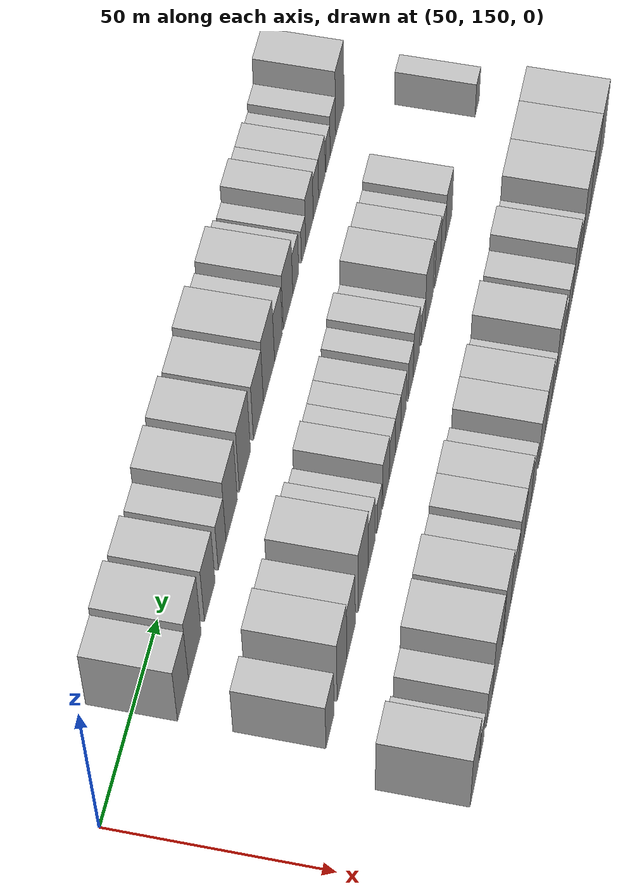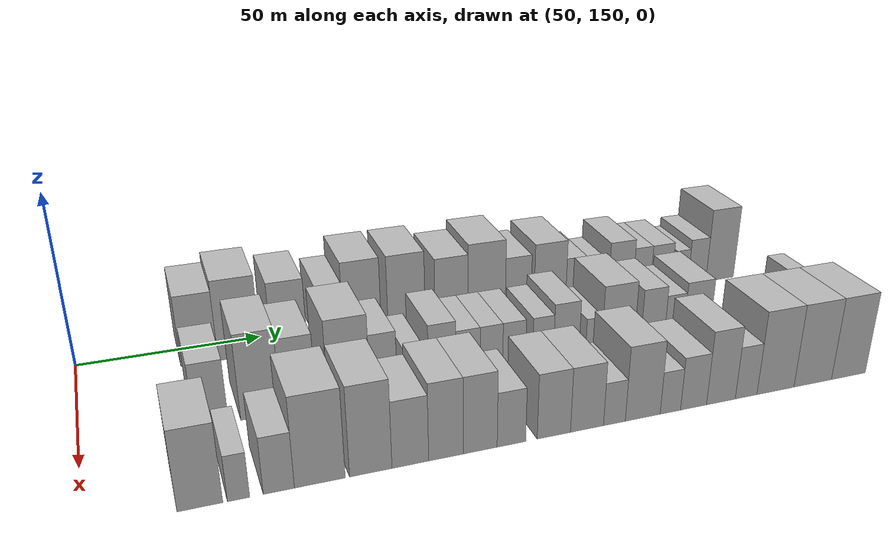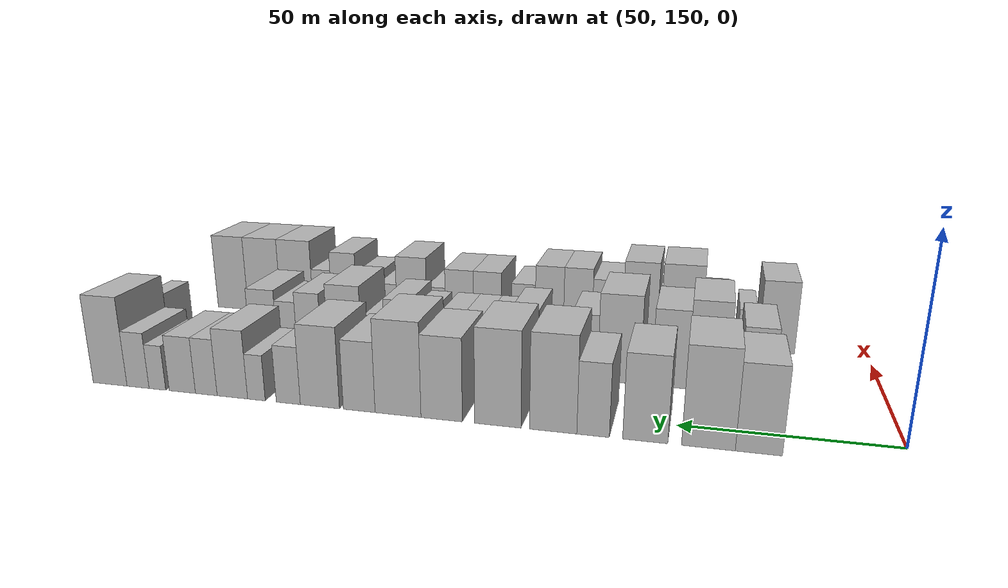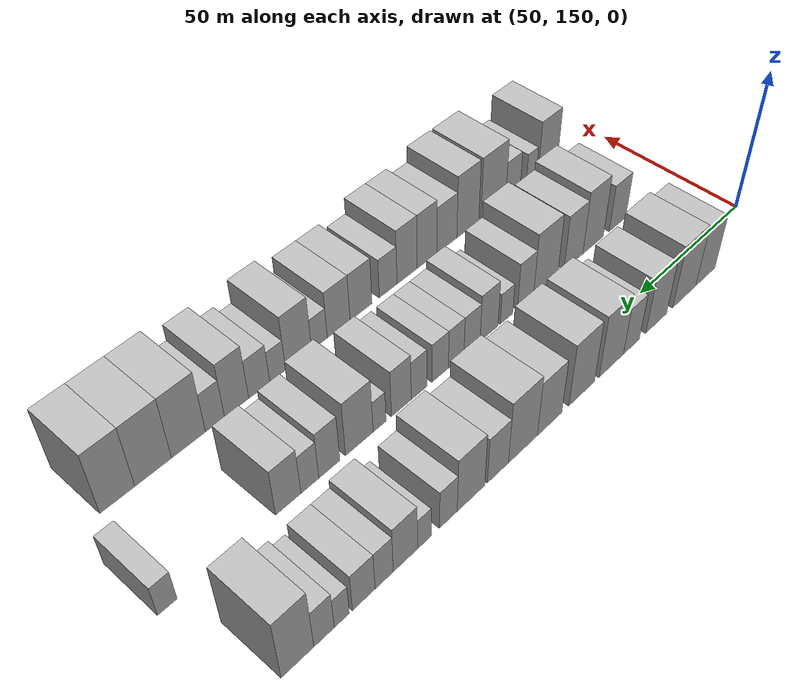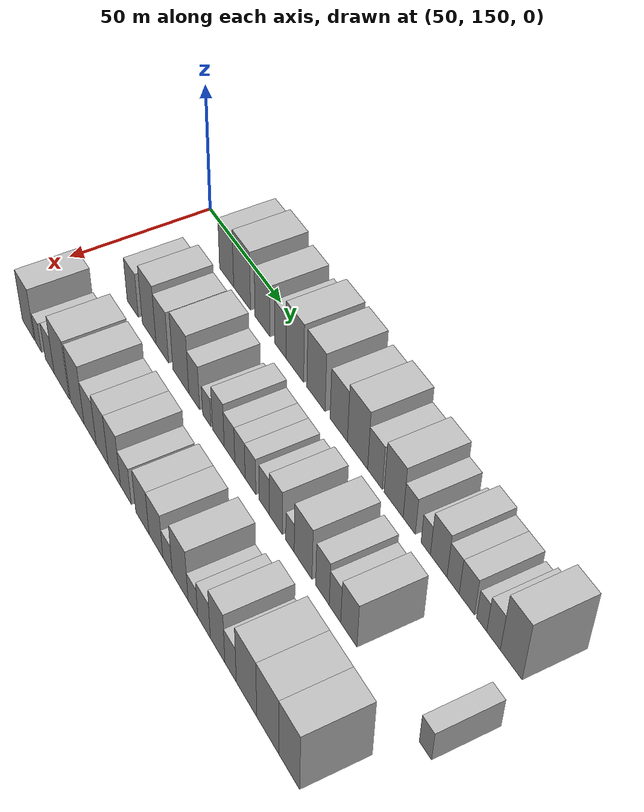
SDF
<sdf version="1.6">
 <world name="default">
  <model name="building_61">
   <static>1</static>
   <pose>50.0000 181.9938 0 0.000000 0.000000 0.000000</pose>
   <link name="link">
    <pose>0 0 10.50 0 0 0</pose>
    <collision name="collision"><geometry><box><size>20.0000 9.9606 21.0000</size></box></geometry></collision>
    <visual name="visual">
     <cast_shadows>0</cast_shadows>
     <geometry><box><size>20.0000 9.9606 21.0000</size></box></geometry>
     <material>
      <script>
       <uri>model://HANNAS_wall/materials/scripts</uri>
       <uri>model://HANNAS_wall/materials/textures</uri>
       <name>vrc/HANNAS_wall</name>
      </script>
     </material>
    </visual>
   </link>
  </model>
  <model name="building_62">
   <static>1</static>
   <pose>50.0000 192.7815 0 0.000000 0.000000 0.000000</pose>
   <link name="link">
    <pose>0 0 12.00 0 0 0</pose>
    <collision name="collision"><geometry><box><size>20.0000 11.6148 24.0000</size></box></geometry></collision>
    <visual name="visual">
     <cast_shadows>0</cast_shadows>
     <geometry><box><size>20.0000 11.6148 24.0000</size></box></geometry>
     <material>
      <script>
       <uri>model://HANNAS_wall/materials/scripts</uri>
       <uri>model://HANNAS_wall/materials/textures</uri>
       <name>vrc/HANNAS_wall</name>
      </script>
     </material>
    </visual>
   </link>
  </model>
  <model name="building_63">
   <static>1</static>
   <pose>50.0000 206.6255 0 0.000000 0.000000 0.000000</pose>
   <link name="link">
    <pose>0 0 10.50 0 0 0</pose>
    <collision name="collision"><geometry><box><size>20.0000 10.0733 21.0000</size></box></geometry></collision>
    <visual name="visual">
     <cast_shadows>0</cast_shadows>
     <geometry><box><size>20.0000 10.0733 21.0000</size></box></geometry>
     <material>
      <script>
       <uri>model://HANNAS_wall/materials/scripts</uri>
       <uri>model://HANNAS_wall/materials/textures</uri>
       <name>vrc/HANNAS_wall</name>
      </script>
     </material>
    </visual>
   </link>
  </model>
  <model name="building_64">
   <static>1</static>
   <pose>50.0000 218.3862 0 0.000000 0.000000 0.000000</pose>
   <link name="link">
    <pose>0 0 9.00 0 0 0</pose>
    <collision name="collision"><geometry><box><size>20.0000 7.4482 18.0000</size></box></geometry></collision>
    <visual name="visual">
     <cast_shadows>0</cast_shadows>
     <geometry><box><size>20.0000 7.4482 18.0000</size></box></geometry>
     <material>
      <script>
       <uri>model://HANNAS_wall/materials/scripts</uri>
       <uri>model://HANNAS_wall/materials/textures</uri>
       <name>vrc/HANNAS_wall</name>
      </script>
     </material>
    </visual>
   </link>
  </model>
  <model name="building_65">
   <static>1</static>
   <pose>50.0000 227.6349 0 0.000000 0.000000 0.000000</pose>
   <link name="link">
    <pose>0 0 12.00 0 0 0</pose>
    <collision name="collision"><geometry><box><size>20.0000 11.0491 24.0000</size></box></geometry></collision>
    <visual name="visual">
     <cast_shadows>0</cast_shadows>
     <geometry><box><size>20.0000 11.0491 24.0000</size></box></geometry>
     <material>
      <script>
       <uri>model://HANNAS_wall/materials/scripts</uri>
       <uri>model://HANNAS_wall/materials/textures</uri>
       <name>vrc/HANNAS_wall</name>
      </script>
     </material>
    </visual>
   </link>
  </model>
  <model name="building_66">
   <static>1</static>
   <pose>50.0000 240.7223 0 0.000000 0.000000 0.000000</pose>
   <link name="link">
    <pose>0 0 12.00 0 0 0</pose>
    <collision name="collision"><geometry><box><size>20.0000 11.1257 24.0000</size></box></geometry></collision>
    <visual name="visual">
     <cast_shadows>0</cast_shadows>
     <geometry><box><size>20.0000 11.1257 24.0000</size></box></geometry>
     <material>
      <script>
       <uri>model://HANNAS_wall/materials/scripts</uri>
       <uri>model://HANNAS_wall/materials/textures</uri>
       <name>vrc/HANNAS_wall</name>
      </script>
     </material>
    </visual>
   </link>
  </model>
  <model name="building_67">
   <static>1</static>
   <pose>50.0000 254.3951 0 0.000000 0.000000 0.000000</pose>
   <link name="link">
    <pose>0 0 10.50 0 0 0</pose>
    <collision name="collision"><geometry><box><size>20.0000 10.2200 21.0000</size></box></geometry></collision>
    <visual name="visual">
     <cast_shadows>0</cast_shadows>
     <geometry><box><size>20.0000 10.2200 21.0000</size></box></geometry>
     <material>
      <script>
       <uri>model://HANNAS_wall/materials/scripts</uri>
       <uri>model://HANNAS_wall/materials/textures</uri>
       <name>vrc/HANNAS_wall</name>
      </script>
     </material>
    </visual>
   </link>
  </model>
  <model name="building_68">
   <static>1</static>
   <pose>50.0000 265.3061 0 0.000000 0.000000 0.000000</pose>
   <link name="link">
    <pose>0 0 12.00 0 0 0</pose>
    <collision name="collision"><geometry><box><size>20.0000 11.6021 24.0000</size></box></geometry></collision>
    <visual name="visual">
     <cast_shadows>0</cast_shadows>
     <geometry><box><size>20.0000 11.6021 24.0000</size></box></geometry>
     <material>
      <script>
       <uri>model://HANNAS_wall/materials/scripts</uri>
       <uri>model://HANNAS_wall/materials/textures</uri>
       <name>vrc/HANNAS_wall</name>
      </script>
     </material>
    </visual>
   </link>
  </model>
  <model name="building_69">
   <static>1</static>
   <pose>50.0000 275.2057 0 0.000000 0.000000 0.000000</pose>
   <link name="link">
    <pose>0 0 9.00 0 0 0</pose>
    <collision name="collision"><geometry><box><size>20.0000 8.1971 18.0000</size></box></geometry></collision>
    <visual name="visual">
     <cast_shadows>0</cast_shadows>
     <geometry><box><size>20.0000 8.1971 18.0000</size></box></geometry>
     <material>
      <script>
       <uri>model://HANNAS_wall/materials/scripts</uri>
       <uri>model://HANNAS_wall/materials/textures</uri>
       <name>vrc/HANNAS_wall</name>
      </script>
     </material>
    </visual>
   </link>
  </model>
  <model name="building_70">
   <static>1</static>
   <pose>50.0000 285.4651 0 0.000000 0.000000 0.000000</pose>
   <link name="link">
    <pose>0 0 10.50 0 0 0</pose>
    <collision name="collision"><geometry><box><size>20.0000 10.3217 21.0000</size></box></geometry></collision>
    <visual name="visual">
     <cast_shadows>0</cast_shadows>
     <geometry><box><size>20.0000 10.3217 21.0000</size></box></geometry>
     <material>
      <script>
       <uri>model://HANNAS_wall/materials/scripts</uri>
       <uri>model://HANNAS_wall/materials/textures</uri>
       <name>vrc/HANNAS_wall</name>
      </script>
     </material>
    </visual>
   </link>
  </model>
  <model name="building_71">
   <static>1</static>
   <pose>50.0000 293.8464 0 0.000000 0.000000 0.000000</pose>
   <link name="link">
    <pose>0 0 7.50 0 0 0</pose>
    <collision name="collision"><geometry><box><size>20.0000 6.4409 15.0000</size></box></geometry></collision>
    <visual name="visual">
     <cast_shadows>0</cast_shadows>
     <geometry><box><size>20.0000 6.4409 15.0000</size></box></geometry>
     <material>
      <script>
       <uri>model://HANNAS_wall/materials/scripts</uri>
       <uri>model://HANNAS_wall/materials/textures</uri>
       <name>vrc/HANNAS_wall</name>
      </script>
     </material>
    </visual>
   </link>
  </model>
  <model name="building_72">
   <static>1</static>
   <pose>50.0000 302.4710 0 0.000000 0.000000 0.000000</pose>
   <link name="link">
    <pose>0 0 6.00 0 0 0</pose>
    <collision name="collision"><geometry><box><size>20.0000 4.8083 12.0000</size></box></geometry></collision>
    <visual name="visual">
     <cast_shadows>0</cast_shadows>
     <geometry><box><size>20.0000 4.8083 12.0000</size></box></geometry>
     <material>
      <script>
       <uri>model://HANNAS_wall/materials/scripts</uri>
       <uri>model://HANNAS_wall/materials/textures</uri>
       <name>vrc/HANNAS_wall</name>
      </script>
     </material>
    </visual>
   </link>
  </model>
  <model name="building_73">
   <static>1</static>
   <pose>50.0000 309.0839 0 0.000000 0.000000 0.000000</pose>
   <link name="link">
    <pose>0 0 9.00 0 0 0</pose>
    <collision name="collision"><geometry><box><size>20.0000 8.4176 18.0000</size></box></geometry></collision>
    <visual name="visual">
     <cast_shadows>0</cast_shadows>
     <geometry><box><size>20.0000 8.4176 18.0000</size></box></geometry>
     <material>
      <script>
       <uri>model://HANNAS_wall/materials/scripts</uri>
       <uri>model://HANNAS_wall/materials/textures</uri>
       <name>vrc/HANNAS_wall</name>
      </script>
     </material>
    </visual>
   </link>
  </model>
  <model name="building_74">
   <static>1</static>
   <pose>50.0000 316.3385 0 0.000000 0.000000 0.000000</pose>
   <link name="link">
    <pose>0 0 7.50 0 0 0</pose>
    <collision name="collision"><geometry><box><size>20.0000 6.0916 15.0000</size></box></geometry></collision>
    <visual name="visual">
     <cast_shadows>0</cast_shadows>
     <geometry><box><size>20.0000 6.0916 15.0000</size></box></geometry>
     <material>
      <script>
       <uri>model://HANNAS_wall/materials/scripts</uri>
       <uri>model://HANNAS_wall/materials/textures</uri>
       <name>vrc/HANNAS_wall</name>
      </script>
     </material>
    </visual>
   </link>
  </model>
  <model name="building_75">
   <static>1</static>
   <pose>50.0000 323.1136 0 0.000000 0.000000 0.000000</pose>
   <link name="link">
    <pose>0 0 7.50 0 0 0</pose>
    <collision name="collision"><geometry><box><size>20.0000 7.4585 15.0000</size></box></geometry></collision>
    <visual name="visual">
     <cast_shadows>0</cast_shadows>
     <geometry><box><size>20.0000 7.4585 15.0000</size></box></geometry>
     <material>
      <script>
       <uri>model://HANNAS_wall/materials/scripts</uri>
       <uri>model://HANNAS_wall/materials/textures</uri>
       <name>vrc/HANNAS_wall</name>
      </script>
     </material>
    </visual>
   </link>
  </model>
  <model name="building_76">
   <static>1</static>
   <pose>50.0000 330.2528 0 0.000000 0.000000 0.000000</pose>
   <link name="link">
    <pose>0 0 6.00 0 0 0</pose>
    <collision name="collision"><geometry><box><size>20.0000 4.8199 12.0000</size></box></geometry></collision>
    <visual name="visual">
     <cast_shadows>0</cast_shadows>
     <geometry><box><size>20.0000 4.8199 12.0000</size></box></geometry>
     <material>
      <script>
       <uri>model://HANNAS_wall/materials/scripts</uri>
       <uri>model://HANNAS_wall/materials/textures</uri>
       <name>vrc/HANNAS_wall</name>
      </script>
     </material>
    </visual>
   </link>
  </model>
  <model name="building_77">
   <static>1</static>
   <pose>50.0000 335.8689 0 0.000000 0.000000 0.000000</pose>
   <link name="link">
    <pose>0 0 7.50 0 0 0</pose>
    <collision name="collision"><geometry><box><size>20.0000 6.4124 15.0000</size></box></geometry></collision>
    <visual name="visual">
     <cast_shadows>0</cast_shadows>
     <geometry><box><size>20.0000 6.4124 15.0000</size></box></geometry>
     <material>
      <script>
       <uri>model://HANNAS_wall/materials/scripts</uri>
       <uri>model://HANNAS_wall/materials/textures</uri>
       <name>vrc/HANNAS_wall</name>
      </script>
     </material>
    </visual>
   </link>
  </model>
  <model name="building_78">
   <static>1</static>
   <pose>50.0000 344.0741 0 0.000000 0.000000 0.000000</pose>
   <link name="link">
    <pose>0 0 12.00 0 0 0</pose>
    <collision name="collision"><geometry><box><size>20.0000 9.9978 24.0000</size></box></geometry></collision>
    <visual name="visual">
     <cast_shadows>0</cast_shadows>
     <geometry><box><size>20.0000 9.9978 24.0000</size></box></geometry>
     <material>
      <script>
       <uri>model://HANNAS_wall/materials/scripts</uri>
       <uri>model://HANNAS_wall/materials/textures</uri>
       <name>vrc/HANNAS_wall</name>
      </script>
     </material>
    </visual>
   </link>
  </model>
  <model name="building_135">
   <static>1</static>
   <pose>82.0000 181.1597 0 0.000000 0.000000 0.000000</pose>
   <link name="link">
    <pose>0 0 9.00 0 0 0</pose>
    <collision name="collision"><geometry><box><size>20.0000 8.3693 18.0000</size></box></geometry></collision>
    <visual name="visual">
     <cast_shadows>0</cast_shadows>
     <geometry><box><size>20.0000 8.3693 18.0000</size></box></geometry>
     <material>
      <script>
       <uri>model://HANNAS_wall/materials/scripts</uri>
       <uri>model://HANNAS_wall/materials/textures</uri>
       <name>vrc/HANNAS_wall</name>
      </script>
     </material>
    </visual>
   </link>
  </model>
  <model name="building_136">
   <static>1</static>
   <pose>82.0000 193.3628 0 0.000000 0.000000 0.000000</pose>
   <link name="link">
    <pose>0 0 12.00 0 0 0</pose>
    <collision name="collision"><geometry><box><size>20.0000 10.0369 24.0000</size></box></geometry></collision>
    <visual name="visual">
     <cast_shadows>0</cast_shadows>
     <geometry><box><size>20.0000 10.0369 24.0000</size></box></geometry>
     <material>
      <script>
       <uri>model://HANNAS_wall/materials/scripts</uri>
       <uri>model://HANNAS_wall/materials/textures</uri>
       <name>vrc/HANNAS_wall</name>
      </script>
     </material>
    </visual>
   </link>
  </model>
  <model name="building_137">
   <static>1</static>
   <pose>82.0000 202.8965 0 0.000000 0.000000 0.000000</pose>
   <link name="link">
    <pose>0 0 10.50 0 0 0</pose>
    <collision name="collision"><geometry><box><size>20.0000 9.0305 21.0000</size></box></geometry></collision>
    <visual name="visual">
     <cast_shadows>0</cast_shadows>
     <geometry><box><size>20.0000 9.0305 21.0000</size></box></geometry>
     <material>
      <script>
       <uri>model://HANNAS_wall/materials/scripts</uri>
       <uri>model://HANNAS_wall/materials/textures</uri>
       <name>vrc/HANNAS_wall</name>
      </script>
     </material>
    </visual>
   </link>
  </model>
  <model name="building_138">
   <static>1</static>
   <pose>82.0000 215.9422 0 0.000000 0.000000 0.000000</pose>
   <link name="link">
    <pose>0 0 12.00 0 0 0</pose>
    <collision name="collision"><geometry><box><size>20.0000 11.0610 24.0000</size></box></geometry></collision>
    <visual name="visual">
     <cast_shadows>0</cast_shadows>
     <geometry><box><size>20.0000 11.0610 24.0000</size></box></geometry>
     <material>
      <script>
       <uri>model://HANNAS_wall/materials/scripts</uri>
       <uri>model://HANNAS_wall/materials/textures</uri>
       <name>vrc/HANNAS_wall</name>
      </script>
     </material>
    </visual>
   </link>
  </model>
  <model name="building_139">
   <static>1</static>
   <pose>82.0000 225.1147 0 0.000000 0.000000 0.000000</pose>
   <link name="link">
    <pose>0 0 9.00 0 0 0</pose>
    <collision name="collision"><geometry><box><size>20.0000 7.2841 18.0000</size></box></geometry></collision>
    <visual name="visual">
     <cast_shadows>0</cast_shadows>
     <geometry><box><size>20.0000 7.2841 18.0000</size></box></geometry>
     <material>
      <script>
       <uri>model://HANNAS_wall/materials/scripts</uri>
       <uri>model://HANNAS_wall/materials/textures</uri>
       <name>vrc/HANNAS_wall</name>
      </script>
     </material>
    </visual>
   </link>
  </model>
  <model name="building_140">
   <static>1</static>
   <pose>82.0000 233.5031 0 0.000000 0.000000 0.000000</pose>
   <link name="link">
    <pose>0 0 6.00 0 0 0</pose>
    <collision name="collision"><geometry><box><size>20.0000 5.4928 12.0000</size></box></geometry></collision>
    <visual name="visual">
     <cast_shadows>0</cast_shadows>
     <geometry><box><size>20.0000 5.4928 12.0000</size></box></geometry>
     <material>
      <script>
       <uri>model://HANNAS_wall/materials/scripts</uri>
       <uri>model://HANNAS_wall/materials/textures</uri>
       <name>vrc/HANNAS_wall</name>
      </script>
     </material>
    </visual>
   </link>
  </model>
  <model name="building_141">
   <static>1</static>
   <pose>82.0000 241.0564 0 0.000000 0.000000 0.000000</pose>
   <link name="link">
    <pose>0 0 9.00 0 0 0</pose>
    <collision name="collision"><geometry><box><size>20.0000 7.6138 18.0000</size></box></geometry></collision>
    <visual name="visual">
     <cast_shadows>0</cast_shadows>
     <geometry><box><size>20.0000 7.6138 18.0000</size></box></geometry>
     <material>
      <script>
       <uri>model://HANNAS_wall/materials/scripts</uri>
       <uri>model://HANNAS_wall/materials/textures</uri>
       <name>vrc/HANNAS_wall</name>
      </script>
     </material>
    </visual>
   </link>
  </model>
  <model name="building_142">
   <static>1</static>
   <pose>82.0000 248.2294 0 0.000000 0.000000 0.000000</pose>
   <link name="link">
    <pose>0 0 7.50 0 0 0</pose>
    <collision name="collision"><geometry><box><size>20.0000 6.7321 15.0000</size></box></geometry></collision>
    <visual name="visual">
     <cast_shadows>0</cast_shadows>
     <geometry><box><size>20.0000 6.7321 15.0000</size></box></geometry>
     <material>
      <script>
       <uri>model://HANNAS_wall/materials/scripts</uri>
       <uri>model://HANNAS_wall/materials/textures</uri>
       <name>vrc/HANNAS_wall</name>
      </script>
     </material>
    </visual>
   </link>
  </model>
  <model name="building_143">
   <static>1</static>
   <pose>82.0000 254.7949 0 0.000000 0.000000 0.000000</pose>
   <link name="link">
    <pose>0 0 7.50 0 0 0</pose>
    <collision name="collision"><geometry><box><size>20.0000 6.3990 15.0000</size></box></geometry></collision>
    <visual name="visual">
     <cast_shadows>0</cast_shadows>
     <geometry><box><size>20.0000 6.3990 15.0000</size></box></geometry>
     <material>
      <script>
       <uri>model://HANNAS_wall/materials/scripts</uri>
       <uri>model://HANNAS_wall/materials/textures</uri>
       <name>vrc/HANNAS_wall</name>
      </script>
     </material>
    </visual>
   </link>
  </model>
  <model name="building_144">
   <static>1</static>
   <pose>82.0000 261.2921 0 0.000000 0.000000 0.000000</pose>
   <link name="link">
    <pose>0 0 7.50 0 0 0</pose>
    <collision name="collision"><geometry><box><size>20.0000 6.5955 15.0000</size></box></geometry></collision>
    <visual name="visual">
     <cast_shadows>0</cast_shadows>
     <geometry><box><size>20.0000 6.5955 15.0000</size></box></geometry>
     <material>
      <script>
       <uri>model://HANNAS_wall/materials/scripts</uri>
       <uri>model://HANNAS_wall/materials/textures</uri>
       <name>vrc/HANNAS_wall</name>
      </script>
     </material>
    </visual>
   </link>
  </model>
  <model name="building_145">
   <static>1</static>
   <pose>82.0000 269.6572 0 0.000000 0.000000 0.000000</pose>
   <link name="link">
    <pose>0 0 7.50 0 0 0</pose>
    <collision name="collision"><geometry><box><size>20.0000 6.1347 15.0000</size></box></geometry></collision>
    <visual name="visual">
     <cast_shadows>0</cast_shadows>
     <geometry><box><size>20.0000 6.1347 15.0000</size></box></geometry>
     <material>
      <script>
       <uri>model://HANNAS_wall/materials/scripts</uri>
       <uri>model://HANNAS_wall/materials/textures</uri>
       <name>vrc/HANNAS_wall</name>
      </script>
     </material>
    </visual>
   </link>
  </model>
  <model name="building_146">
   <static>1</static>
   <pose>82.0000 276.5188 0 0.000000 0.000000 0.000000</pose>
   <link name="link">
    <pose>0 0 9.00 0 0 0</pose>
    <collision name="collision"><geometry><box><size>20.0000 7.5886 18.0000</size></box></geometry></collision>
    <visual name="visual">
     <cast_shadows>0</cast_shadows>
     <geometry><box><size>20.0000 7.5886 18.0000</size></box></geometry>
     <material>
      <script>
       <uri>model://HANNAS_wall/materials/scripts</uri>
       <uri>model://HANNAS_wall/materials/textures</uri>
       <name>vrc/HANNAS_wall</name>
      </script>
     </material>
    </visual>
   </link>
  </model>
  <model name="building_147">
   <static>1</static>
   <pose>82.0000 284.7291 0 0.000000 0.000000 0.000000</pose>
   <link name="link">
    <pose>0 0 6.00 0 0 0</pose>
    <collision name="collision"><geometry><box><size>20.0000 4.8320 12.0000</size></box></geometry></collision>
    <visual name="visual">
     <cast_shadows>0</cast_shadows>
     <geometry><box><size>20.0000 4.8320 12.0000</size></box></geometry>
     <material>
      <script>
       <uri>model://HANNAS_wall/materials/scripts</uri>
       <uri>model://HANNAS_wall/materials/textures</uri>
       <name>vrc/HANNAS_wall</name>
      </script>
     </material>
    </visual>
   </link>
  </model>
  <model name="building_148">
   <static>1</static>
   <pose>82.0000 292.1650 0 0.000000 0.000000 0.000000</pose>
   <link name="link">
    <pose>0 0 10.50 0 0 0</pose>
    <collision name="collision"><geometry><box><size>20.0000 10.0397 21.0000</size></box></geometry></collision>
    <visual name="visual">
     <cast_shadows>0</cast_shadows>
     <geometry><box><size>20.0000 10.0397 21.0000</size></box></geometry>
     <material>
      <script>
       <uri>model://HANNAS_wall/materials/scripts</uri>
       <uri>model://HANNAS_wall/materials/textures</uri>
       <name>vrc/HANNAS_wall</name>
      </script>
     </material>
    </visual>
   </link>
  </model>
  <model name="building_149">
   <static>1</static>
   <pose>82.0000 302.8822 0 0.000000 0.000000 0.000000</pose>
   <link name="link">
    <pose>0 0 9.00 0 0 0</pose>
    <collision name="collision"><geometry><box><size>20.0000 7.3946 18.0000</size></box></geometry></collision>
    <visual name="visual">
     <cast_shadows>0</cast_shadows>
     <geometry><box><size>20.0000 7.3946 18.0000</size></box></geometry>
     <material>
      <script>
       <uri>model://HANNAS_wall/materials/scripts</uri>
       <uri>model://HANNAS_wall/materials/textures</uri>
       <name>vrc/HANNAS_wall</name>
      </script>
     </material>
    </visual>
   </link>
  </model>
  <model name="building_150">
   <static>1</static>
   <pose>82.0000 309.6469 0 0.000000 0.000000 0.000000</pose>
   <link name="link">
    <pose>0 0 7.50 0 0 0</pose>
    <collision name="collision"><geometry><box><size>20.0000 6.1348 15.0000</size></box></geometry></collision>
    <visual name="visual">
     <cast_shadows>0</cast_shadows>
     <geometry><box><size>20.0000 6.1348 15.0000</size></box></geometry>
     <material>
      <script>
       <uri>model://HANNAS_wall/materials/scripts</uri>
       <uri>model://HANNAS_wall/materials/textures</uri>
       <name>vrc/HANNAS_wall</name>
      </script>
     </material>
    </visual>
   </link>
  </model>
  <model name="building_151">
   <static>1</static>
   <pose>82.0000 316.9776 0 0.000000 0.000000 0.000000</pose>
   <link name="link">
    <pose>0 0 9.00 0 0 0</pose>
    <collision name="collision"><geometry><box><size>20.0000 8.5266 18.0000</size></box></geometry></collision>
    <visual name="visual">
     <cast_shadows>0</cast_shadows>
     <geometry><box><size>20.0000 8.5266 18.0000</size></box></geometry>
     <material>
      <script>
       <uri>model://HANNAS_wall/materials/scripts</uri>
       <uri>model://HANNAS_wall/materials/textures</uri>
       <name>vrc/HANNAS_wall</name>
      </script>
     </material>
    </visual>
   </link>
  </model>
  <model name="building_152">
   <static>1</static>
   <pose>82.0000 354.8834 0 0.000000 0.000000 0.000000</pose>
   <link name="link">
    <pose>0 0 6.00 0 0 0</pose>
    <collision name="collision"><geometry><box><size>20.0000 5.7616 12.0000</size></box></geometry></collision>
    <visual name="visual">
     <cast_shadows>0</cast_shadows>
     <geometry><box><size>20.0000 5.7616 12.0000</size></box></geometry>
     <material>
      <script>
       <uri>model://HANNAS_wall/materials/scripts</uri>
       <uri>model://HANNAS_wall/materials/textures</uri>
       <name>vrc/HANNAS_wall</name>
      </script>
     </material>
    </visual>
   </link>
  </model>
  <model name="building_206">
   <static>1</static>
   <pose>114.0000 174.7132 0 0.000000 0.000000 0.000000</pose>
   <link name="link">
    <pose>0 0 10.50 0 0 0</pose>
    <collision name="collision"><geometry><box><size>20.0000 9.8915 21.0000</size></box></geometry></collision>
    <visual name="visual">
     <cast_shadows>0</cast_shadows>
     <geometry><box><size>20.0000 9.8915 21.0000</size></box></geometry>
     <material>
      <script>
       <uri>model://HANNAS_wall/materials/scripts</uri>
       <uri>model://HANNAS_wall/materials/textures</uri>
       <name>vrc/HANNAS_wall</name>
      </script>
     </material>
    </visual>
   </link>
  </model>
  <model name="building_207">
   <static>1</static>
   <pose>114.0000 183.1106 0 0.000000 0.000000 0.000000</pose>
   <link name="link">
    <pose>0 0 6.00 0 0 0</pose>
    <collision name="collision"><geometry><box><size>20.0000 4.9033 12.0000</size></box></geometry></collision>
    <visual name="visual">
     <cast_shadows>0</cast_shadows>
     <geometry><box><size>20.0000 4.9033 12.0000</size></box></geometry>
     <material>
      <script>
       <uri>model://HANNAS_wall/materials/scripts</uri>
       <uri>model://HANNAS_wall/materials/textures</uri>
       <name>vrc/HANNAS_wall</name>
      </script>
     </material>
    </visual>
   </link>
  </model>
  <model name="building_208">
   <static>1</static>
   <pose>114.0000 192.0715 0 0.000000 0.000000 0.000000</pose>
   <link name="link">
    <pose>0 0 7.50 0 0 0</pose>
    <collision name="collision"><geometry><box><size>20.0000 7.0186 15.0000</size></box></geometry></collision>
    <visual name="visual">
     <cast_shadows>0</cast_shadows>
     <geometry><box><size>20.0000 7.0186 15.0000</size></box></geometry>
     <material>
      <script>
       <uri>model://HANNAS_wall/materials/scripts</uri>
       <uri>model://HANNAS_wall/materials/textures</uri>
       <name>vrc/HANNAS_wall</name>
      </script>
     </material>
    </visual>
   </link>
  </model>
  <model name="building_209">
   <static>1</static>
   <pose>114.0000 201.4294 0 0.000000 0.000000 0.000000</pose>
   <link name="link">
    <pose>0 0 12.00 0 0 0</pose>
    <collision name="collision"><geometry><box><size>20.0000 11.6973 24.0000</size></box></geometry></collision>
    <visual name="visual">
     <cast_shadows>0</cast_shadows>
     <geometry><box><size>20.0000 11.6973 24.0000</size></box></geometry>
     <material>
      <script>
       <uri>model://HANNAS_wall/materials/scripts</uri>
       <uri>model://HANNAS_wall/materials/textures</uri>
       <name>vrc/HANNAS_wall</name>
      </script>
     </material>
    </visual>
   </link>
  </model>
  <model name="building_210">
   <static>1</static>
   <pose>114.0000 213.3009 0 0.000000 0.000000 0.000000</pose>
   <link name="link">
    <pose>0 0 12.00 0 0 0</pose>
    <collision name="collision"><geometry><box><size>20.0000 10.0457 24.0000</size></box></geometry></collision>
    <visual name="visual">
     <cast_shadows>0</cast_shadows>
     <geometry><box><size>20.0000 10.0457 24.0000</size></box></geometry>
     <material>
      <script>
       <uri>model://HANNAS_wall/materials/scripts</uri>
       <uri>model://HANNAS_wall/materials/textures</uri>
       <name>vrc/HANNAS_wall</name>
      </script>
     </material>
    </visual>
   </link>
  </model>
  <model name="building_211">
   <static>1</static>
   <pose>114.0000 222.7723 0 0.000000 0.000000 0.000000</pose>
   <link name="link">
    <pose>0 0 9.00 0 0 0</pose>
    <collision name="collision"><geometry><box><size>20.0000 8.8970 18.0000</size></box></geometry></collision>
    <visual name="visual">
     <cast_shadows>0</cast_shadows>
     <geometry><box><size>20.0000 8.8970 18.0000</size></box></geometry>
     <material>
      <script>
       <uri>model://HANNAS_wall/materials/scripts</uri>
       <uri>model://HANNAS_wall/materials/textures</uri>
       <name>vrc/HANNAS_wall</name>
      </script>
     </material>
    </visual>
   </link>
  </model>
  <model name="building_212">
   <static>1</static>
   <pose>114.0000 231.4949 0 0.000000 0.000000 0.000000</pose>
   <link name="link">
    <pose>0 0 10.50 0 0 0</pose>
    <collision name="collision"><geometry><box><size>20.0000 8.5482 21.0000</size></box></geometry></collision>
    <visual name="visual">
     <cast_shadows>0</cast_shadows>
     <geometry><box><size>20.0000 8.5482 21.0000</size></box></geometry>
     <material>
      <script>
       <uri>model://HANNAS_wall/materials/scripts</uri>
       <uri>model://HANNAS_wall/materials/textures</uri>
       <name>vrc/HANNAS_wall</name>
      </script>
     </material>
    </visual>
   </link>
  </model>
  <model name="building_213">
   <static>1</static>
   <pose>114.0000 240.0572 0 0.000000 0.000000 0.000000</pose>
   <link name="link">
    <pose>0 0 10.50 0 0 0</pose>
    <collision name="collision"><geometry><box><size>20.0000 8.5765 21.0000</size></box></geometry></collision>
    <visual name="visual">
     <cast_shadows>0</cast_shadows>
     <geometry><box><size>20.0000 8.5765 21.0000</size></box></geometry>
     <material>
      <script>
       <uri>model://HANNAS_wall/materials/scripts</uri>
       <uri>model://HANNAS_wall/materials/textures</uri>
       <name>vrc/HANNAS_wall</name>
      </script>
     </material>
    </visual>
   </link>
  </model>
  <model name="building_214">
   <static>1</static>
   <pose>114.0000 248.0110 0 0.000000 0.000000 0.000000</pose>
   <link name="link">
    <pose>0 0 7.50 0 0 0</pose>
    <collision name="collision"><geometry><box><size>20.0000 7.3312 15.0000</size></box></geometry></collision>
    <visual name="visual">
     <cast_shadows>0</cast_shadows>
     <geometry><box><size>20.0000 7.3312 15.0000</size></box></geometry>
     <material>
      <script>
       <uri>model://HANNAS_wall/materials/scripts</uri>
       <uri>model://HANNAS_wall/materials/textures</uri>
       <name>vrc/HANNAS_wall</name>
      </script>
     </material>
    </visual>
   </link>
  </model>
  <model name="building_215">
   <static>1</static>
   <pose>114.0000 259.0695 0 0.000000 0.000000 0.000000</pose>
   <link name="link">
    <pose>0 0 9.00 0 0 0</pose>
    <collision name="collision"><geometry><box><size>20.0000 8.7857 18.0000</size></box></geometry></collision>
    <visual name="visual">
     <cast_shadows>0</cast_shadows>
     <geometry><box><size>20.0000 8.7857 18.0000</size></box></geometry>
     <material>
      <script>
       <uri>model://HANNAS_wall/materials/scripts</uri>
       <uri>model://HANNAS_wall/materials/textures</uri>
       <name>vrc/HANNAS_wall</name>
      </script>
     </material>
    </visual>
   </link>
  </model>
  <model name="building_216">
   <static>1</static>
   <pose>114.0000 267.9138 0 0.000000 0.000000 0.000000</pose>
   <link name="link">
    <pose>0 0 9.00 0 0 0</pose>
    <collision name="collision"><geometry><box><size>20.0000 8.9031 18.0000</size></box></geometry></collision>
    <visual name="visual">
     <cast_shadows>0</cast_shadows>
     <geometry><box><size>20.0000 8.9031 18.0000</size></box></geometry>
     <material>
      <script>
       <uri>model://HANNAS_wall/materials/scripts</uri>
       <uri>model://HANNAS_wall/materials/textures</uri>
       <name>vrc/HANNAS_wall</name>
      </script>
     </material>
    </visual>
   </link>
  </model>
  <model name="building_217">
   <static>1</static>
   <pose>114.0000 275.3535 0 0.000000 0.000000 0.000000</pose>
   <link name="link">
    <pose>0 0 6.00 0 0 0</pose>
    <collision name="collision"><geometry><box><size>20.0000 5.9763 12.0000</size></box></geometry></collision>
    <visual name="visual">
     <cast_shadows>0</cast_shadows>
     <geometry><box><size>20.0000 5.9763 12.0000</size></box></geometry>
     <material>
      <script>
       <uri>model://HANNAS_wall/materials/scripts</uri>
       <uri>model://HANNAS_wall/materials/textures</uri>
       <name>vrc/HANNAS_wall</name>
      </script>
     </material>
    </visual>
   </link>
  </model>
  <model name="building_218">
   <static>1</static>
   <pose>114.0000 283.2015 0 0.000000 0.000000 0.000000</pose>
   <link name="link">
    <pose>0 0 10.50 0 0 0</pose>
    <collision name="collision"><geometry><box><size>20.0000 9.7197 21.0000</size></box></geometry></collision>
    <visual name="visual">
     <cast_shadows>0</cast_shadows>
     <geometry><box><size>20.0000 9.7197 21.0000</size></box></geometry>
     <material>
      <script>
       <uri>model://HANNAS_wall/materials/scripts</uri>
       <uri>model://HANNAS_wall/materials/textures</uri>
       <name>vrc/HANNAS_wall</name>
      </script>
     </material>
    </visual>
   </link>
  </model>
  <model name="building_219">
   <static>1</static>
   <pose>114.0000 290.9482 0 0.000000 0.000000 0.000000</pose>
   <link name="link">
    <pose>0 0 6.00 0 0 0</pose>
    <collision name="collision"><geometry><box><size>20.0000 5.7737 12.0000</size></box></geometry></collision>
    <visual name="visual">
     <cast_shadows>0</cast_shadows>
     <geometry><box><size>20.0000 5.7737 12.0000</size></box></geometry>
     <material>
      <script>
       <uri>model://HANNAS_wall/materials/scripts</uri>
       <uri>model://HANNAS_wall/materials/textures</uri>
       <name>vrc/HANNAS_wall</name>
      </script>
     </material>
    </visual>
   </link>
  </model>
  <model name="building_220">
   <static>1</static>
   <pose>114.0000 297.5795 0 0.000000 0.000000 0.000000</pose>
   <link name="link">
    <pose>0 0 7.50 0 0 0</pose>
    <collision name="collision"><geometry><box><size>20.0000 7.4888 15.0000</size></box></geometry></collision>
    <visual name="visual">
     <cast_shadows>0</cast_shadows>
     <geometry><box><size>20.0000 7.4888 15.0000</size></box></geometry>
     <material>
      <script>
       <uri>model://HANNAS_wall/materials/scripts</uri>
       <uri>model://HANNAS_wall/materials/textures</uri>
       <name>vrc/HANNAS_wall</name>
      </script>
     </material>
    </visual>
   </link>
  </model>
  <model name="building_221">
   <static>1</static>
   <pose>114.0000 305.5381 0 0.000000 0.000000 0.000000</pose>
   <link name="link">
    <pose>0 0 10.50 0 0 0</pose>
    <collision name="collision"><geometry><box><size>20.0000 8.4282 21.0000</size></box></geometry></collision>
    <visual name="visual">
     <cast_shadows>0</cast_shadows>
     <geometry><box><size>20.0000 8.4282 21.0000</size></box></geometry>
     <material>
      <script>
       <uri>model://HANNAS_wall/materials/scripts</uri>
       <uri>model://HANNAS_wall/materials/textures</uri>
       <name>vrc/HANNAS_wall</name>
      </script>
     </material>
    </visual>
   </link>
  </model>
  <model name="building_222">
   <static>1</static>
   <pose>114.0000 312.9791 0 0.000000 0.000000 0.000000</pose>
   <link name="link">
    <pose>0 0 7.50 0 0 0</pose>
    <collision name="collision"><geometry><box><size>20.0000 6.4538 15.0000</size></box></geometry></collision>
    <visual name="visual">
     <cast_shadows>0</cast_shadows>
     <geometry><box><size>20.0000 6.4538 15.0000</size></box></geometry>
     <material>
      <script>
       <uri>model://HANNAS_wall/materials/scripts</uri>
       <uri>model://HANNAS_wall/materials/textures</uri>
       <name>vrc/HANNAS_wall</name>
      </script>
     </material>
    </visual>
   </link>
  </model>
  <model name="building_223">
   <static>1</static>
   <pose>114.0000 321.8258 0 0.000000 0.000000 0.000000</pose>
   <link name="link">
    <pose>0 0 12.00 0 0 0</pose>
    <collision name="collision"><geometry><box><size>20.0000 11.2397 24.0000</size></box></geometry></collision>
    <visual name="visual">
     <cast_shadows>0</cast_shadows>
     <geometry><box><size>20.0000 11.2397 24.0000</size></box></geometry>
     <material>
      <script>
       <uri>model://HANNAS_wall/materials/scripts</uri>
       <uri>model://HANNAS_wall/materials/textures</uri>
       <name>vrc/HANNAS_wall</name>
      </script>
     </material>
    </visual>
   </link>
  </model>
  <model name="building_224">
   <static>1</static>
   <pose>114.0000 333.2820 0 0.000000 0.000000 0.000000</pose>
   <link name="link">
    <pose>0 0 12.00 0 0 0</pose>
    <collision name="collision"><geometry><box><size>20.0000 11.6727 24.0000</size></box></geometry></collision>
    <visual name="visual">
     <cast_shadows>0</cast_shadows>
     <geometry><box><size>20.0000 11.6727 24.0000</size></box></geometry>
     <material>
      <script>
       <uri>model://HANNAS_wall/materials/scripts</uri>
       <uri>model://HANNAS_wall/materials/textures</uri>
       <name>vrc/HANNAS_wall</name>
      </script>
     </material>
    </visual>
   </link>
  </model>
  <model name="building_225">
   <static>1</static>
   <pose>114.0000 344.4888 0 0.000000 0.000000 0.000000</pose>
   <link name="link">
    <pose>0 0 12.00 0 0 0</pose>
    <collision name="collision"><geometry><box><size>20.0000 10.7410 24.0000</size></box></geometry></collision>
    <visual name="visual">
     <cast_shadows>0</cast_shadows>
     <geometry><box><size>20.0000 10.7410 24.0000</size></box></geometry>
     <material>
      <script>
       <uri>model://HANNAS_wall/materials/scripts</uri>
       <uri>model://HANNAS_wall/materials/textures</uri>
       <name>vrc/HANNAS_wall</name>
      </script>
     </material>
    </visual>
   </link>
  </model>
 </world>
</sdf>
